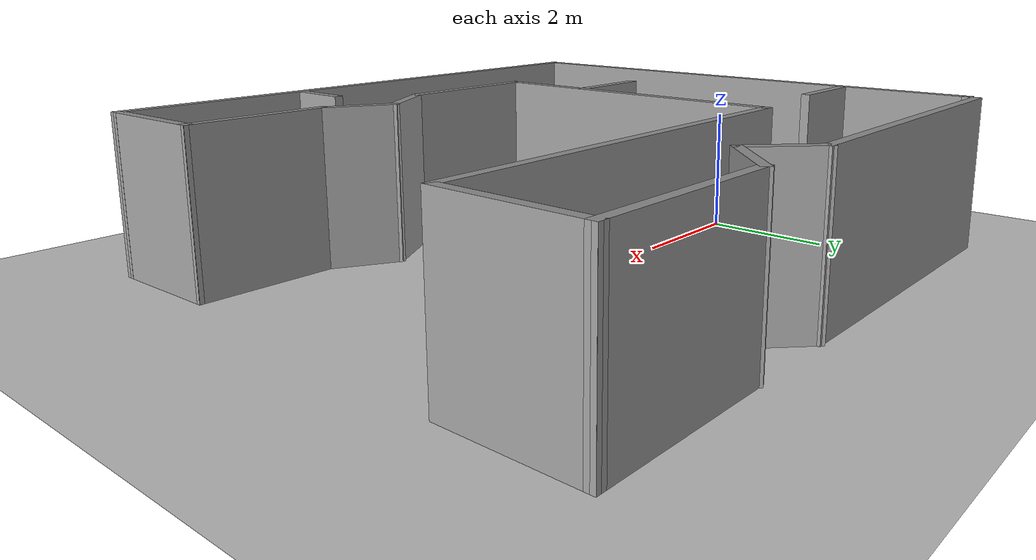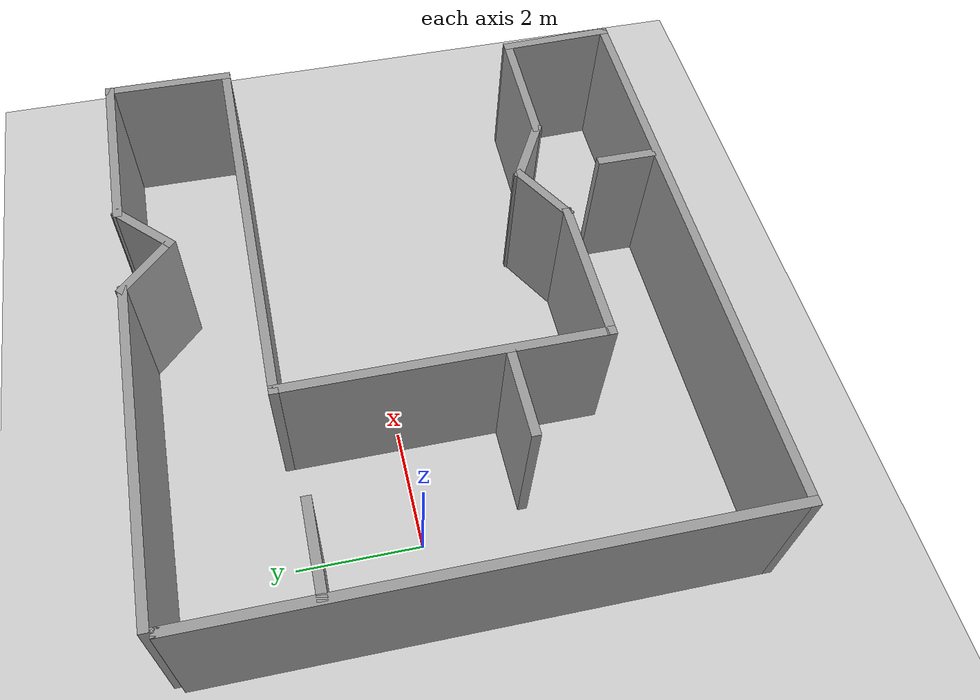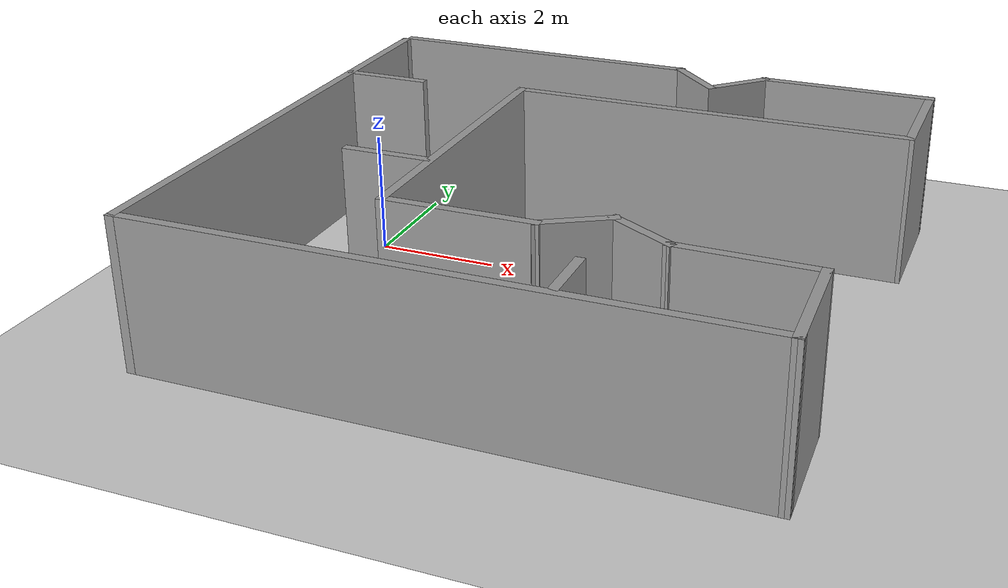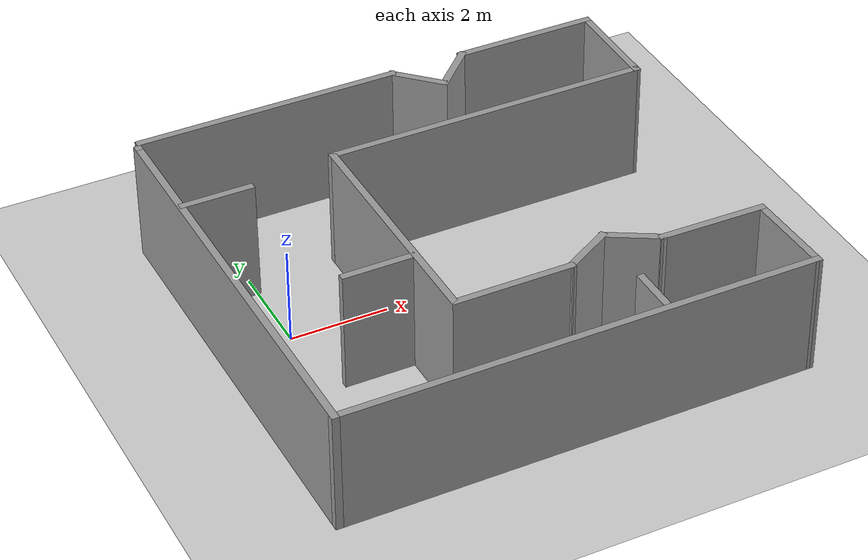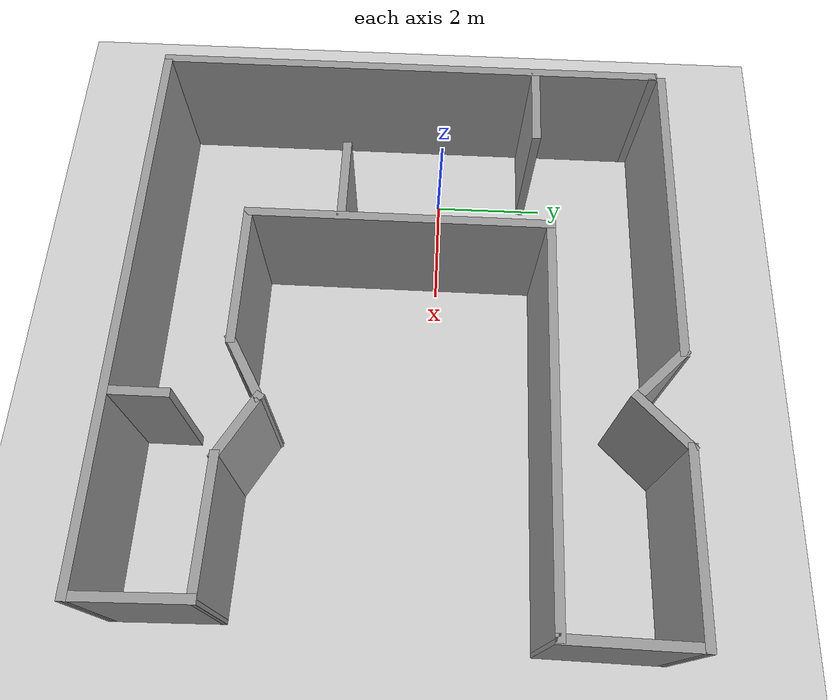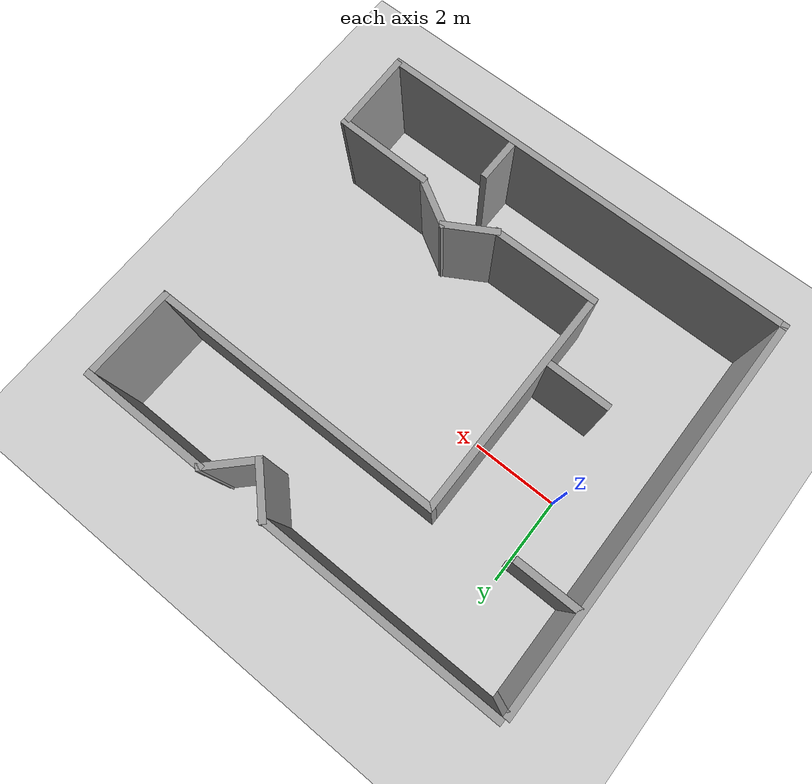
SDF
<sdf version="1.6">
 <world name="default">
  <light name="sun" type="directional">
   <pose>0 0 10 0 -0 0</pose>
   <diffuse>0.8 0.8 0.8 1</diffuse>
   <specular>0.2 0.2 0.2 1</specular>
   <attenuation>
    <range>1000</range>
    <constant>0.9</constant>
    <linear>0.01</linear>
    <quadratic>0.001</quadratic>
   </attenuation>
   <direction>-0.5 0.1 -0.9</direction>
  </light>
  <model name="ground_plane">
   <static>1</static>
   <link name="link">
    <collision name="collision">
     <geometry><plane><normal>0 0 1</normal><size>100 100</size></plane></geometry>
     <surface><friction><ode><mu>100</mu><mu2>50</mu2></ode></friction></surface>
    </collision>
    <visual name="visual">
     <cast_shadows>0</cast_shadows>
     <geometry><plane><normal>0 0 1</normal><size>100 100</size></plane></geometry>
     <material>
      <script><uri>file://media/materials/scripts/gazebo.material</uri><name>Gazebo/Grey</name></script>
     </material>
    </visual>
   </link>
  </model>
  <gravity>0 0 -9.8</gravity>
  <magnetic_field>6e-06 2.3e-05 -4.2e-05</magnetic_field>
  <atmosphere type="adiabatic"/>
  <physics name="default_physics" default="0" type="ode">
   <max_step_size>0.001</max_step_size>
   <real_time_factor>1</real_time_factor>
   <real_time_update_rate>1000</real_time_update_rate>
  </physics>
  <scene><ambient>0.4 0.4 0.4 1</ambient><background>0.7 0.7 0.7 1</background><shadows>1</shadows></scene>
  <audio><device>default</device></audio>
  <spherical_coordinates>
   <surface_model>EARTH_WGS84</surface_model>
   <latitude_deg>0</latitude_deg>
   <longitude_deg>0</longitude_deg>
   <elevation>0</elevation>
   <heading_deg>0</heading_deg>
  </spherical_coordinates>
  <model name="123">
   <pose>3.51851 -0.587023 0 0 -0 0</pose>
   <link name="Wall_0">
    <collision name="Wall_0_Collision">
     <geometry><box><size>5.5 0.15 2.5</size></box></geometry>
     <pose>0 0 1.25 0 -0 0</pose>
    </collision>
    <visual name="Wall_0_Visual">
     <pose>0 0 1.25 0 -0 0</pose>
     <geometry><box><size>5.5 0.15 2.5</size></box></geometry>
     <material>
      <script><uri>file://media/materials/scripts/gazebo.material</uri><name>Gazebo/Grey</name></script>
      <ambient>1 1 1 1</ambient>
     </material>
     <meta><layer>0</layer></meta>
    </visual>
    <pose>-2.15864 4.48541 0 0 -0 0</pose>
   </link>
   <link name="Wall_1">
    <collision name="Wall_1_Collision">
     <geometry><box><size>1.25 0.15 2.5</size></box></geometry>
     <pose>0 0 1.25 0 -0 0</pose>
    </collision>
    <visual name="Wall_1_Visual">
     <pose>0 0 1.25 0 -0 0</pose>
     <geometry><box><size>1.25 0.15 2.5</size></box></geometry>
     <material>
      <script><uri>file://media/materials/scripts/gazebo.material</uri><name>Gazebo/Grey</name></script>
      <ambient>1 1 1 1</ambient>
     </material>
     <meta><layer>0</layer></meta>
    </visual>
    <pose>0.905271 4.0965 0 0 -0 -0.785398</pose>
   </link>
   <link name="Wall_17">
    <collision name="Wall_17_Collision">
     <geometry><box><size>1.96764 0.15 2.5</size></box></geometry>
     <pose>0 0 1.25 0 -0 0</pose>
    </collision>
    <visual name="Wall_17_Visual">
     <pose>0 0 1.25 0 -0 0</pose>
     <geometry><box><size>1.96764 0.15 2.5</size></box></geometry>
     <material>
      <script><uri>file://media/materials/scripts/gazebo.material</uri><name>Gazebo/Grey</name></script>
      <ambient>1 1 1 1</ambient>
     </material>
     <meta><layer>0</layer></meta>
    </visual>
    <pose>4.65412 -3.60607 0 0 -0 -1.54534</pose>
   </link>
   <link name="Wall_18">
    <collision name="Wall_18_Collision">
     <geometry><box><size>9.75 0.15 2.5</size></box></geometry>
     <pose>0 0 1.25 0 -0 0</pose>
    </collision>
    <visual name="Wall_18_Visual">
     <pose>0 0 1.25 0 -0 0</pose>
     <geometry><box><size>9.75 0.15 2.5</size></box></geometry>
     <material>
      <script><uri>file://media/materials/scripts/gazebo.material</uri><name>Gazebo/Grey</name></script>
      <ambient>1 1 1 1</ambient>
     </material>
     <meta><layer>0</layer></meta>
    </visual>
    <pose>-0.122747 -4.51459 0 0 -0 3.14159</pose>
   </link>
   <link name="Wall_19">
    <collision name="Wall_19_Collision">
     <geometry><box><size>9 0.15 2.5</size></box></geometry>
     <pose>0 0 1.25 0 -0 0</pose>
    </collision>
    <visual name="Wall_19_Visual">
     <pose>0 0 1.25 0 -0 0</pose>
     <geometry><box><size>9 0.15 2.5</size></box></geometry>
     <material>
      <script><uri>file://media/materials/scripts/gazebo.material</uri><name>Gazebo/Grey</name></script>
      <ambient>1 1 1 1</ambient>
     </material>
     <meta><layer>0</layer></meta>
    </visual>
    <pose>-4.92275 -0.089591 0 0 -0 1.5708</pose>
   </link>
   <link name="Wall_2">
    <collision name="Wall_2_Collision">
     <geometry><box><size>1.25 0.15 2.5</size></box></geometry>
     <pose>0 0 1.25 0 -0 0</pose>
    </collision>
    <visual name="Wall_2_Visual">
     <pose>0 0 1.25 0 -0 0</pose>
     <geometry><box><size>1.25 0.15 2.5</size></box></geometry>
     <material>
      <script><uri>file://media/materials/scripts/gazebo.material</uri><name>Gazebo/Grey</name></script>
      <ambient>1 1 1 1</ambient>
     </material>
     <meta><layer>0</layer></meta>
    </visual>
    <pose>1.68309 4.0965 0 0 -0 0.785398</pose>
   </link>
   <link name="Wall_21">
    <collision name="Wall_21_Collision">
     <geometry><box><size>0.15 0.15 2.5</size></box></geometry>
     <pose>0 0 1.25 0 -0 0</pose>
    </collision>
    <visual name="Wall_21_Visual">
     <pose>0 0 1.25 0 -0 0</pose>
     <geometry><box><size>0.15 0.15 2.5</size></box></geometry>
     <material>
      <script><uri>file://media/materials/scripts/gazebo.material</uri><name>Gazebo/Grey</name></script>
      <ambient>1 1 1 1</ambient>
     </material>
     <meta><layer>0</layer></meta>
    </visual>
    <pose>-4.92275 4.33541 0 0 -0 0</pose>
   </link>
   <link name="Wall_22">
    <collision name="Wall_22_Collision">
     <geometry><box><size>0.15 0.15 2.5</size></box></geometry>
     <pose>0 0 1.25 0 -0 0</pose>
    </collision>
    <visual name="Wall_22_Visual">
     <pose>0 0 1.25 0 -0 0</pose>
     <geometry><box><size>0.15 0.15 2.5</size></box></geometry>
     <material>
      <script><uri>file://media/materials/scripts/gazebo.material</uri><name>Gazebo/Grey</name></script>
      <ambient>1 1 1 1</ambient>
     </material>
     <meta><layer>0</layer></meta>
    </visual>
    <pose>-4.92275 4.33541 0 0 -0 0</pose>
   </link>
   <link name="Wall_24">
    <collision name="Wall_24_Collision">
     <geometry><box><size>5.25 0.15 2.5</size></box></geometry>
     <pose>0 0 1.25 0 -0 0</pose>
    </collision>
    <visual name="Wall_24_Visual">
     <pose>0 0 1.25 0 -0 0</pose>
     <geometry><box><size>5.25 0.15 2.5</size></box></geometry>
     <material>
      <script><uri>file://media/materials/scripts/gazebo.material</uri><name>Gazebo/Grey</name></script>
      <ambient>1 1 1 1</ambient>
     </material>
     <meta><layer>0</layer></meta>
    </visual>
    <pose>-1.71608 -0.112076 0 0 -0 -1.5708</pose>
   </link>
   <link name="Wall_25">
    <collision name="Wall_25_Collision">
     <geometry><box><size>2.5 0.15 2.5</size></box></geometry>
     <pose>0 0 1.25 0 -0 0</pose>
    </collision>
    <visual name="Wall_25_Visual">
     <pose>0 0 1.25 0 -0 0</pose>
     <geometry><box><size>2.5 0.15 2.5</size></box></geometry>
     <material>
      <script><uri>file://media/materials/scripts/gazebo.material</uri><name>Gazebo/Grey</name></script>
      <ambient>1 1 1 1</ambient>
     </material>
     <meta><layer>0</layer></meta>
    </visual>
    <pose>-0.54108 -2.66208 0 0 -0 0</pose>
   </link>
   <link name="Wall_26">
    <collision name="Wall_26_Collision">
     <geometry><box><size>1.25 0.15 2.5</size></box></geometry>
     <pose>0 0 1.25 0 -0 0</pose>
    </collision>
    <visual name="Wall_26_Visual">
     <pose>0 0 1.25 0 -0 0</pose>
     <geometry><box><size>1.25 0.15 2.5</size></box></geometry>
     <material>
      <script><uri>file://media/materials/scripts/gazebo.material</uri><name>Gazebo/Grey</name></script>
      <ambient>1 1 1 1</ambient>
     </material>
     <meta><layer>0</layer></meta>
    </visual>
    <pose>1.11023 -2.38708 0 0 -0 0.523599</pose>
   </link>
   <link name="Wall_27">
    <collision name="Wall_27_Collision">
     <geometry><box><size>1.25 0.15 2.5</size></box></geometry>
     <pose>0 0 1.25 0 -0 0</pose>
    </collision>
    <visual name="Wall_27_Visual">
     <pose>0 0 1.25 0 -0 0</pose>
     <geometry><box><size>1.25 0.15 2.5</size></box></geometry>
     <material>
      <script><uri>file://media/materials/scripts/gazebo.material</uri><name>Gazebo/Grey</name></script>
      <ambient>1 1 1 1</ambient>
     </material>
     <meta><layer>0</layer></meta>
    </visual>
    <pose>2.06286 -2.38708 0 0 -0 -0.523599</pose>
   </link>
   <link name="Wall_28">
    <collision name="Wall_28_Collision">
     <geometry><box><size>2.24212 0.15 2.5</size></box></geometry>
     <pose>0 0 1.25 0 -0 0</pose>
    </collision>
    <visual name="Wall_28_Visual">
     <pose>0 0 1.25 0 -0 0</pose>
     <geometry><box><size>2.24212 0.15 2.5</size></box></geometry>
     <material>
      <script><uri>file://media/materials/scripts/gazebo.material</uri><name>Gazebo/Grey</name></script>
      <ambient>1 1 1 1</ambient>
     </material>
     <meta><layer>0</layer></meta>
    </visual>
    <pose>3.58508 -2.67981 0 0 -0 -0.016953</pose>
   </link>
   <link name="Wall_3">
    <collision name="Wall_3_Collision">
     <geometry><box><size>3 0.15 2.5</size></box></geometry>
     <pose>0 0 1.25 0 -0 0</pose>
    </collision>
    <visual name="Wall_3_Visual">
     <pose>0 0 1.25 0 -0 0</pose>
     <geometry><box><size>3 0.15 2.5</size></box></geometry>
     <material>
      <script><uri>file://media/materials/scripts/gazebo.material</uri><name>Gazebo/Grey</name></script>
      <ambient>1 1 1 1</ambient>
     </material>
     <meta><layer>0</layer></meta>
    </visual>
    <pose>3.497 4.48541 0 0 -0 0</pose>
   </link>
   <link name="Wall_30">
    <collision name="Wall_30_Collision">
     <geometry><box><size>1.5 0.15 2.5</size></box></geometry>
     <pose>0 0 1.25 0 -0 0</pose>
    </collision>
    <visual name="Wall_30_Visual">
     <pose>0 0 1.25 0 -0 0</pose>
     <geometry><box><size>1.5 0.15 2.5</size></box></geometry>
     <material>
      <script><uri>file://media/materials/scripts/gazebo.material</uri><name>Gazebo/Grey</name></script>
      <ambient>1 1 1 1</ambient>
     </material>
     <meta><layer>0</layer></meta>
    </visual>
    <pose>-4.20766 2.21427 0 0 -0 0</pose>
   </link>
   <link name="Wall_32">
    <collision name="Wall_32_Collision">
     <geometry><box><size>1.5 0.15 2.5</size></box></geometry>
     <pose>0 0 1.25 0 -0 0</pose>
    </collision>
    <visual name="Wall_32_Visual">
     <pose>0 0 1.25 0 -0 0</pose>
     <geometry><box><size>1.5 0.15 2.5</size></box></geometry>
     <material>
      <script><uri>file://media/materials/scripts/gazebo.material</uri><name>Gazebo/Grey</name></script>
      <ambient>1 1 1 1</ambient>
     </material>
     <meta><layer>0</layer></meta>
    </visual>
    <pose>-2.45816 -1.09341 0 0 -0 3.14159</pose>
   </link>
   <link name="Wall_34">
    <collision name="Wall_34_Collision">
     <geometry><box><size>1 0.15 2.5</size></box></geometry>
     <pose>0 0 1.25 0 -0 0</pose>
    </collision>
    <visual name="Wall_34_Visual">
     <pose>0 0 1.25 0 -0 0</pose>
     <geometry><box><size>1 0.15 2.5</size></box></geometry>
     <material>
      <script><uri>file://media/materials/scripts/gazebo.material</uri><name>Gazebo/Grey</name></script>
      <ambient>1 1 1 1</ambient>
     </material>
     <meta><layer>0</layer></meta>
    </visual>
    <pose>1.59391 -3.97025 0 0 -0 -1.5708</pose>
   </link>
   <link name="Wall_4">
    <collision name="Wall_4_Collision">
     <geometry><box><size>2.19759 0.15 2.5</size></box></geometry>
     <pose>0 0 1.25 0 -0 0</pose>
    </collision>
    <visual name="Wall_4_Visual">
     <pose>0 0 1.25 0 -0 0</pose>
     <geometry><box><size>2.19759 0.15 2.5</size></box></geometry>
     <material>
      <script><uri>file://media/materials/scripts/gazebo.material</uri><name>Gazebo/Grey</name></script>
      <ambient>1 1 1 1</ambient>
     </material>
     <meta><layer>0</layer></meta>
    </visual>
    <pose>4.9117 3.46167 0 0 -0 -1.58085</pose>
   </link>
   <link name="Wall_5">
    <collision name="Wall_5_Collision">
     <geometry><box><size>6.75 0.15 2.5</size></box></geometry>
     <pose>0 0 1.25 0 -0 0</pose>
    </collision>
    <visual name="Wall_5_Visual">
     <pose>0 0 1.25 0 -0 0</pose>
     <geometry><box><size>6.75 0.15 2.5</size></box></geometry>
     <material>
      <script><uri>file://media/materials/scripts/gazebo.material</uri><name>Gazebo/Grey</name></script>
      <ambient>1 1 1 1</ambient>
     </material>
     <meta><layer>0</layer></meta>
    </visual>
    <pose>1.58392 2.43792 0 0 -0 3.14159</pose>
   </link>
   <static>1</static>
  </model>
 </world>
</sdf>
